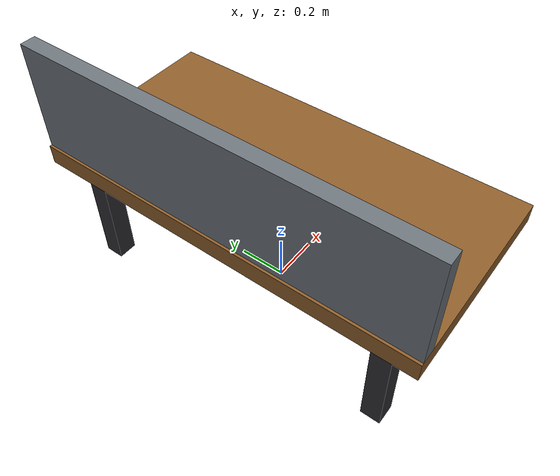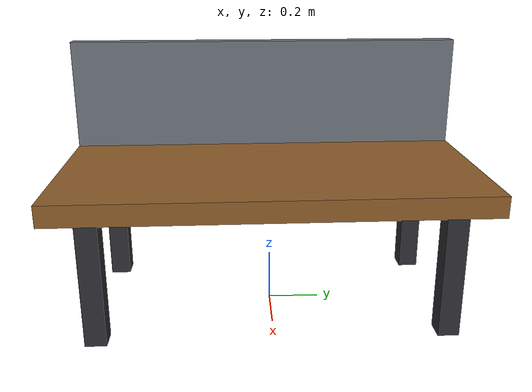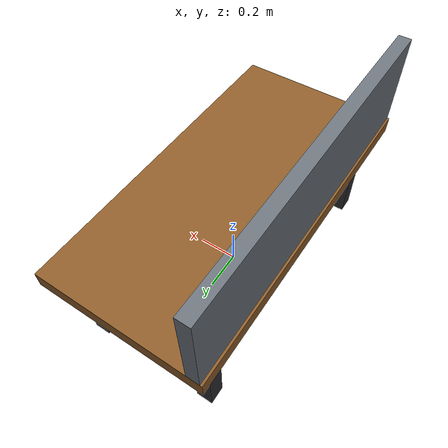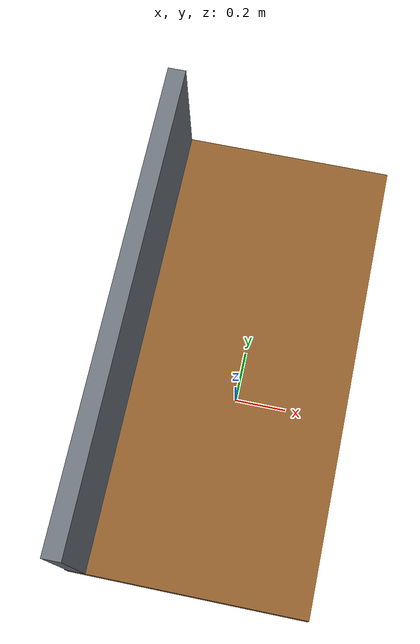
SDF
<?xml version="1.0"?>
<sdf version="1.8">
  <model name="workcell_table">
    <static>true</static>
    <link name="table">
      <collision name="top_collision">
        <pose>0 0 0.53 0 0 0</pose>
        <geometry><box><size>0.80 1.60 0.08</size></box></geometry>
      </collision>
      <visual name="top_visual">
        <pose>0 0 0.53 0 0 0</pose>
        <geometry><box><size>0.80 1.60 0.08</size></box></geometry>
        <material><ambient>0.38 0.25 0.12 1</ambient><diffuse>0.55 0.36 0.16 1</diffuse><specular>0.08 0.08 0.08 1</specular></material>
      </visual>

      <collision name="leg_fl_collision"><pose>-0.30 0.65 0.245 0 0 0</pose><geometry><box><size>0.08 0.08 0.49</size></box></geometry></collision>
      <collision name="leg_fr_collision"><pose>-0.30 -0.65 0.245 0 0 0</pose><geometry><box><size>0.08 0.08 0.49</size></box></geometry></collision>
      <collision name="leg_rl_collision"><pose>0.30 0.65 0.245 0 0 0</pose><geometry><box><size>0.08 0.08 0.49</size></box></geometry></collision>
      <collision name="leg_rr_collision"><pose>0.30 -0.65 0.245 0 0 0</pose><geometry><box><size>0.08 0.08 0.49</size></box></geometry></collision>

      <visual name="leg_fl_visual"><pose>-0.30 0.65 0.245 0 0 0</pose><geometry><box><size>0.08 0.08 0.49</size></box></geometry><material><ambient>0.12 0.12 0.13 1</ambient><diffuse>0.18 0.18 0.20 1</diffuse></material></visual>
      <visual name="leg_fr_visual"><pose>-0.30 -0.65 0.245 0 0 0</pose><geometry><box><size>0.08 0.08 0.49</size></box></geometry><material><ambient>0.12 0.12 0.13 1</ambient><diffuse>0.18 0.18 0.20 1</diffuse></material></visual>
      <visual name="leg_rl_visual"><pose>0.30 0.65 0.245 0 0 0</pose><geometry><box><size>0.08 0.08 0.49</size></box></geometry><material><ambient>0.12 0.12 0.13 1</ambient><diffuse>0.18 0.18 0.20 1</diffuse></material></visual>
      <visual name="leg_rr_visual"><pose>0.30 -0.65 0.245 0 0 0</pose><geometry><box><size>0.08 0.08 0.49</size></box></geometry><material><ambient>0.12 0.12 0.13 1</ambient><diffuse>0.18 0.18 0.20 1</diffuse></material></visual>

      <collision name="backstop_collision">
        <pose>-0.36 0 0.79 0 0 0</pose>
        <geometry><box><size>0.06 1.60 0.44</size></box></geometry>
      </collision>
      <visual name="backstop_visual">
        <pose>-0.36 0 0.79 0 0 0</pose>
        <geometry><box><size>0.06 1.60 0.44</size></box></geometry>
        <material><ambient>0.30 0.32 0.34 1</ambient><diffuse>0.42 0.45 0.48 1</diffuse></material>
      </visual>
    </link>
  </model>
</sdf>
